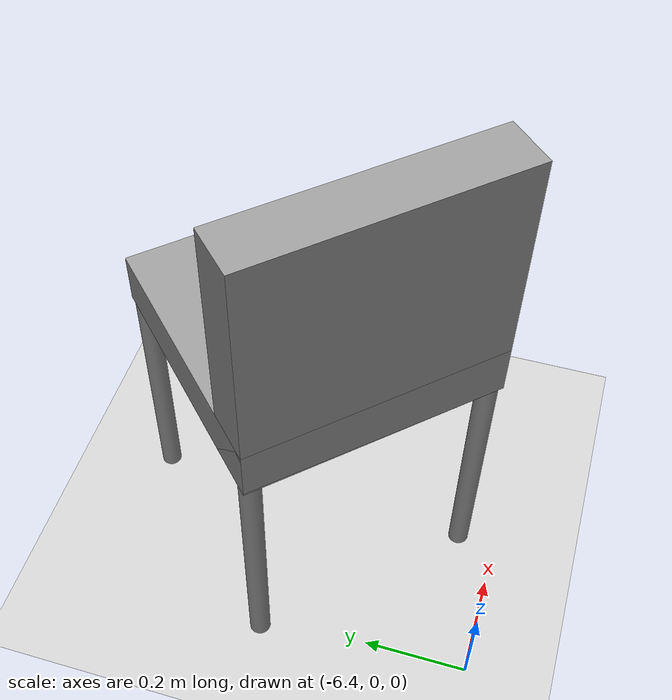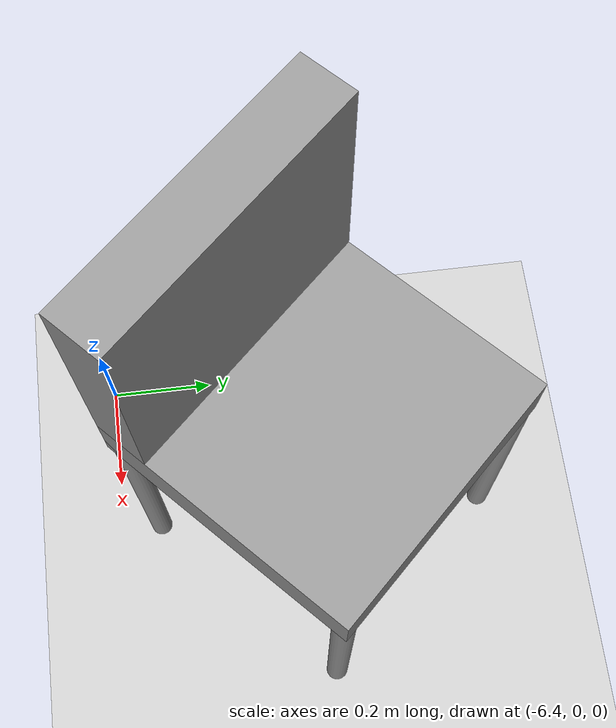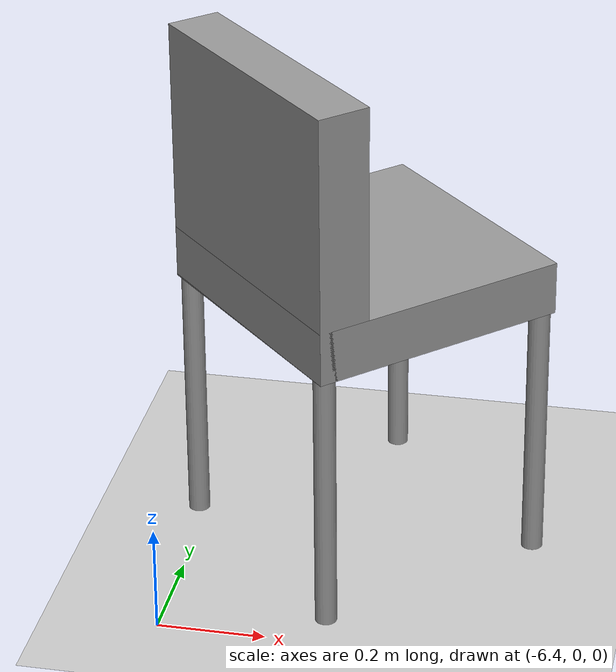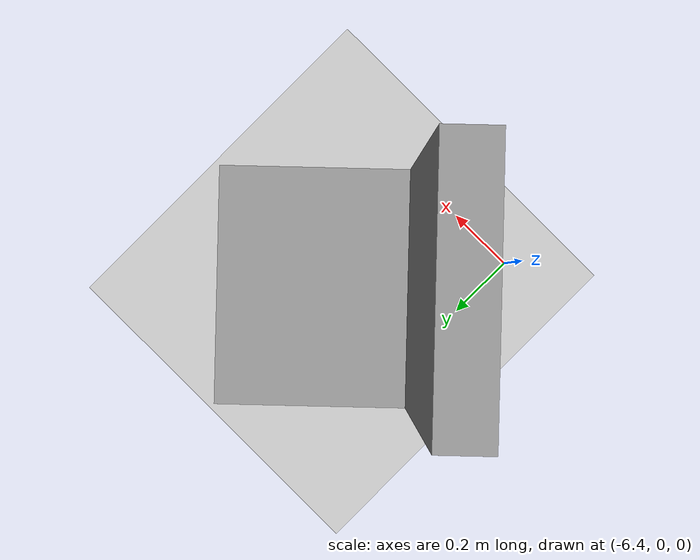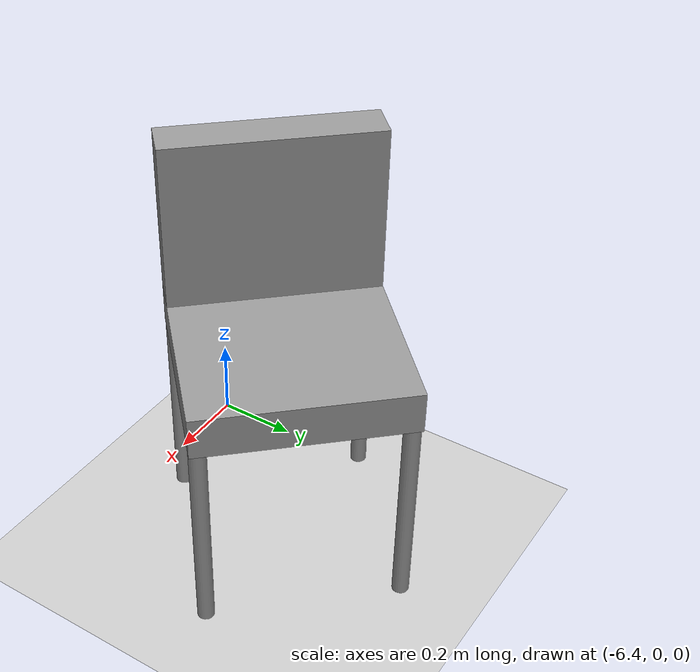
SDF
<sdf version="1.6">
 <world name="default">
  <model name="ground_plane">
   <static>1</static>
   <link name="link">
    <collision name="collision">
     <geometry><plane><normal>0 0 1</normal><size>100 100</size></plane></geometry>
     <surface>
      <contact><collide_bitmask>65535</collide_bitmask></contact>
      <friction><ode><mu>100</mu><mu2>50</mu2></ode></friction>
     </surface>
    </collision>
    <visual name="visual">
     <cast_shadows>0</cast_shadows>
     <geometry><plane><normal>0 0 1</normal><size>100 100</size></plane></geometry>
     <material>
      <script><uri>file://media/materials/scripts/gazebo.material</uri><name>Gazebo/Grey</name></script>
     </material>
    </visual>
   </link>
  </model>
  <model name="chair_12">
   <link name="link_0">
    <inertial>
     <mass>1</mass>
     <inertia><ixx>0.145833</ixx><ixy>0</ixy><ixz>0</ixz><iyy>0.145833</iyy><iyz>0</iyz><izz>0.125</izz></inertia>
    </inertial>
    <pose>-0.23 -0.19667 -0.280001 0 -0 0</pose>
    <visual name="visual">
     <geometry><cylinder><radius>0.02</radius><length>0.5</length></cylinder></geometry>
     <material>
      <lighting>1</lighting>
      <script><uri>file://media/materials/scripts/gazebo.material</uri><name>Gazebo/Grey</name></script>
      <shader type="vertex"><normal_map>__default__</normal_map></shader>
      <ambient>0.3 0.3 0.3 1</ambient>
      <diffuse>0.7 0.7 0.7 1</diffuse>
      <specular>0.01 0.01 0.01 1</specular>
      <emissive>0 0 0 1</emissive>
     </material>
    </visual>
    <collision name="collision">
     <geometry><cylinder><radius>0.02</radius><length>0.5</length></cylinder></geometry>
     <surface>
      <friction>
       <ode><mu>1</mu><mu2>1</mu2><fdir1>0 0 0</fdir1><slip1>0</slip1><slip2>0</slip2></ode>
       <torsional>
        <coefficient>1</coefficient>
        <patch_radius>0</patch_radius>
        <surface_radius>0</surface_radius>
        <use_patch_radius>1</use_patch_radius>
        <ode><slip>0</slip></ode>
       </torsional>
      </friction>
      <bounce><restitution_coefficient>0</restitution_coefficient><threshold>1e+06</threshold></bounce>
      <contact>
       <collide_without_contact>0</collide_without_contact>
       <collide_without_contact_bitmask>1</collide_without_contact_bitmask>
       <collide_bitmask>1</collide_bitmask>
       <ode>
        <soft_cfm>0</soft_cfm>
        <soft_erp>0.2</soft_erp>
        <kp>1e+13</kp>
        <kd>1</kd>
        <max_vel>0.01</max_vel>
        <min_depth>0</min_depth>
       </ode>
       <bullet>
        <split_impulse>1</split_impulse>
        <split_impulse_penetration_threshold>-0.01</split_impulse_penetration_threshold>
        <soft_cfm>0</soft_cfm>
        <soft_erp>0.2</soft_erp>
        <kp>1e+13</kp>
        <kd>1</kd>
       </bullet>
      </contact>
     </surface>
    </collision>
   </link>
   <link name="link_0_clone">
    <inertial>
     <mass>1</mass>
     <inertia><ixx>0.145833</ixx><ixy>0</ixy><ixz>0</ixz><iyy>0.145833</iyy><iyz>0</iyz><izz>0.125</izz></inertia>
    </inertial>
    <pose>0.23 -0.19667 -0.280001 0 -0 0</pose>
    <visual name="visual">
     <geometry><cylinder><radius>0.02</radius><length>0.5</length></cylinder></geometry>
     <material>
      <lighting>1</lighting>
      <script><uri>file://media/materials/scripts/gazebo.material</uri><name>Gazebo/Grey</name></script>
      <shader type="vertex"><normal_map>__default__</normal_map></shader>
      <ambient>0.3 0.3 0.3 1</ambient>
      <diffuse>0.7 0.7 0.7 1</diffuse>
      <specular>0.01 0.01 0.01 1</specular>
      <emissive>0 0 0 1</emissive>
     </material>
    </visual>
    <collision name="collision">
     <geometry><cylinder><radius>0.02</radius><length>0.5</length></cylinder></geometry>
     <surface>
      <friction>
       <ode><mu>1</mu><mu2>1</mu2><fdir1>0 0 0</fdir1><slip1>0</slip1><slip2>0</slip2></ode>
       <torsional>
        <coefficient>1</coefficient>
        <patch_radius>0</patch_radius>
        <surface_radius>0</surface_radius>
        <use_patch_radius>1</use_patch_radius>
        <ode><slip>0</slip></ode>
       </torsional>
      </friction>
      <bounce><restitution_coefficient>0</restitution_coefficient><threshold>1e+06</threshold></bounce>
      <contact>
       <collide_without_contact>0</collide_without_contact>
       <collide_without_contact_bitmask>1</collide_without_contact_bitmask>
       <collide_bitmask>1</collide_bitmask>
       <ode>
        <soft_cfm>0</soft_cfm>
        <soft_erp>0.2</soft_erp>
        <kp>1e+13</kp>
        <kd>1</kd>
        <max_vel>0.01</max_vel>
        <min_depth>0</min_depth>
       </ode>
       <bullet>
        <split_impulse>1</split_impulse>
        <split_impulse_penetration_threshold>-0.01</split_impulse_penetration_threshold>
        <soft_cfm>0</soft_cfm>
        <soft_erp>0.2</soft_erp>
        <kp>1e+13</kp>
        <kd>1</kd>
       </bullet>
      </contact>
     </surface>
    </collision>
   </link>
   <link name="link_0_clone_0">
    <inertial>
     <mass>1</mass>
     <inertia><ixx>0.145833</ixx><ixy>0</ixy><ixz>0</ixz><iyy>0.145833</iyy><iyz>0</iyz><izz>0.125</izz></inertia>
    </inertial>
    <pose>0.23 0.26333 -0.280001 0 -0 0</pose>
    <visual name="visual">
     <geometry><cylinder><radius>0.02</radius><length>0.5</length></cylinder></geometry>
     <material>
      <lighting>1</lighting>
      <script><uri>file://media/materials/scripts/gazebo.material</uri><name>Gazebo/Grey</name></script>
      <shader type="vertex"><normal_map>__default__</normal_map></shader>
      <ambient>0.3 0.3 0.3 1</ambient>
      <diffuse>0.7 0.7 0.7 1</diffuse>
      <specular>0.01 0.01 0.01 1</specular>
      <emissive>0 0 0 1</emissive>
     </material>
    </visual>
    <collision name="collision">
     <geometry><cylinder><radius>0.02</radius><length>0.5</length></cylinder></geometry>
     <surface>
      <friction>
       <ode><mu>1</mu><mu2>1</mu2><fdir1>0 0 0</fdir1><slip1>0</slip1><slip2>0</slip2></ode>
       <torsional>
        <coefficient>1</coefficient>
        <patch_radius>0</patch_radius>
        <surface_radius>0</surface_radius>
        <use_patch_radius>1</use_patch_radius>
        <ode><slip>0</slip></ode>
       </torsional>
      </friction>
      <bounce><restitution_coefficient>0</restitution_coefficient><threshold>1e+06</threshold></bounce>
      <contact>
       <collide_without_contact>0</collide_without_contact>
       <collide_without_contact_bitmask>1</collide_without_contact_bitmask>
       <collide_bitmask>1</collide_bitmask>
       <ode>
        <soft_cfm>0</soft_cfm>
        <soft_erp>0.2</soft_erp>
        <kp>1e+13</kp>
        <kd>1</kd>
        <max_vel>0.01</max_vel>
        <min_depth>0</min_depth>
       </ode>
       <bullet>
        <split_impulse>1</split_impulse>
        <split_impulse_penetration_threshold>-0.01</split_impulse_penetration_threshold>
        <soft_cfm>0</soft_cfm>
        <soft_erp>0.2</soft_erp>
        <kp>1e+13</kp>
        <kd>1</kd>
       </bullet>
      </contact>
     </surface>
    </collision>
   </link>
   <link name="link_0_clone_1">
    <inertial>
     <mass>1</mass>
     <inertia><ixx>0.145833</ixx><ixy>0</ixy><ixz>0</ixz><iyy>0.145833</iyy><iyz>0</iyz><izz>0.125</izz></inertia>
    </inertial>
    <pose>-0.23 0.26333 -0.280001 0 -0 0</pose>
    <visual name="visual">
     <geometry><cylinder><radius>0.02</radius><length>0.5</length></cylinder></geometry>
     <material>
      <lighting>1</lighting>
      <script><uri>file://media/materials/scripts/gazebo.material</uri><name>Gazebo/Grey</name></script>
      <shader type="vertex"><normal_map>__default__</normal_map></shader>
      <ambient>0.3 0.3 0.3 1</ambient>
      <diffuse>0.7 0.7 0.7 1</diffuse>
      <specular>0.01 0.01 0.01 1</specular>
      <emissive>0 0 0 1</emissive>
     </material>
    </visual>
    <collision name="collision">
     <geometry><cylinder><radius>0.02</radius><length>0.5</length></cylinder></geometry>
     <surface>
      <friction>
       <ode><mu>1</mu><mu2>1</mu2><fdir1>0 0 0</fdir1><slip1>0</slip1><slip2>0</slip2></ode>
       <torsional>
        <coefficient>1</coefficient>
        <patch_radius>0</patch_radius>
        <surface_radius>0</surface_radius>
        <use_patch_radius>1</use_patch_radius>
        <ode><slip>0</slip></ode>
       </torsional>
      </friction>
      <bounce><restitution_coefficient>0</restitution_coefficient><threshold>1e+06</threshold></bounce>
      <contact>
       <collide_without_contact>0</collide_without_contact>
       <collide_without_contact_bitmask>1</collide_without_contact_bitmask>
       <collide_bitmask>1</collide_bitmask>
       <ode>
        <soft_cfm>0</soft_cfm>
        <soft_erp>0.2</soft_erp>
        <kp>1e+13</kp>
        <kd>1</kd>
        <max_vel>0.01</max_vel>
        <min_depth>0</min_depth>
       </ode>
       <bullet>
        <split_impulse>1</split_impulse>
        <split_impulse_penetration_threshold>-0.01</split_impulse_penetration_threshold>
        <soft_cfm>0</soft_cfm>
        <soft_erp>0.2</soft_erp>
        <kp>1e+13</kp>
        <kd>1</kd>
       </bullet>
      </contact>
     </surface>
    </collision>
   </link>
   <link name="link_2">
    <inertial>
     <mass>1</mass>
     <inertia>
      <ixx>0.166667</ixx>
      <ixy>0</ixy>
      <ixz>0</ixz>
      <iyy>0.166667</iyy>
      <iyz>0</iyz>
      <izz>0.166667</izz>
     </inertia>
    </inertial>
    <pose>0 0.03333 0.019999 0 -0 0</pose>
    <visual name="visual">
     <geometry><box><size>0.5 0.5 0.1</size></box></geometry>
     <material>
      <lighting>1</lighting>
      <script><uri>file://media/materials/scripts/gazebo.material</uri><name>Gazebo/Grey</name></script>
      <shader type="vertex"><normal_map>__default__</normal_map></shader>
      <ambient>0.3 0.3 0.3 1</ambient>
      <diffuse>0.7 0.7 0.7 1</diffuse>
      <specular>0.01 0.01 0.01 1</specular>
      <emissive>0 0 0 1</emissive>
     </material>
    </visual>
    <collision name="collision">
     <geometry><box><size>0.5 0.5 0.1</size></box></geometry>
     <surface>
      <friction>
       <ode><mu>1</mu><mu2>1</mu2><fdir1>0 0 0</fdir1><slip1>0</slip1><slip2>0</slip2></ode>
       <torsional>
        <coefficient>1</coefficient>
        <patch_radius>0</patch_radius>
        <surface_radius>0</surface_radius>
        <use_patch_radius>1</use_patch_radius>
        <ode><slip>0</slip></ode>
       </torsional>
      </friction>
      <bounce><restitution_coefficient>0</restitution_coefficient><threshold>1e+06</threshold></bounce>
      <contact>
       <collide_without_contact>0</collide_without_contact>
       <collide_without_contact_bitmask>1</collide_without_contact_bitmask>
       <collide_bitmask>1</collide_bitmask>
       <ode>
        <soft_cfm>0</soft_cfm>
        <soft_erp>0.2</soft_erp>
        <kp>1e+13</kp>
        <kd>1</kd>
        <max_vel>0.01</max_vel>
        <min_depth>0</min_depth>
       </ode>
       <bullet>
        <split_impulse>1</split_impulse>
        <split_impulse_penetration_threshold>-0.01</split_impulse_penetration_threshold>
        <soft_cfm>0</soft_cfm>
        <soft_erp>0.2</soft_erp>
        <kp>1e+13</kp>
        <kd>1</kd>
       </bullet>
      </contact>
     </surface>
    </collision>
   </link>
   <link name="link_2_clone">
    <inertial>
     <mass>1</mass>
     <inertia>
      <ixx>0.166667</ixx>
      <ixy>0</ixy>
      <ixz>0</ixz>
      <iyy>0.166667</iyy>
      <iyz>0</iyz>
      <izz>0.166667</izz>
     </inertia>
    </inertial>
    <pose>0 -0.166646 0.220004 1.5707 -0 0</pose>
    <visual name="visual">
     <geometry><box><size>0.5 0.5 0.1</size></box></geometry>
     <material>
      <lighting>1</lighting>
      <script><uri>file://media/materials/scripts/gazebo.material</uri><name>Gazebo/Grey</name></script>
      <shader type="vertex"><normal_map>__default__</normal_map></shader>
      <ambient>0.3 0.3 0.3 1</ambient>
      <diffuse>0.7 0.7 0.7 1</diffuse>
      <specular>0.01 0.01 0.01 1</specular>
      <emissive>0 0 0 1</emissive>
     </material>
    </visual>
    <collision name="collision">
     <geometry><box><size>0.5 0.5 0.1</size></box></geometry>
     <surface>
      <friction>
       <ode><mu>1</mu><mu2>1</mu2><fdir1>0 0 0</fdir1><slip1>0</slip1><slip2>0</slip2></ode>
       <torsional>
        <coefficient>1</coefficient>
        <patch_radius>0</patch_radius>
        <surface_radius>0</surface_radius>
        <use_patch_radius>1</use_patch_radius>
        <ode><slip>0</slip></ode>
       </torsional>
      </friction>
      <bounce><restitution_coefficient>0</restitution_coefficient><threshold>1e+06</threshold></bounce>
      <contact>
       <collide_without_contact>0</collide_without_contact>
       <collide_without_contact_bitmask>1</collide_without_contact_bitmask>
       <collide_bitmask>1</collide_bitmask>
       <ode>
        <soft_cfm>0</soft_cfm>
        <soft_erp>0.2</soft_erp>
        <kp>1e+13</kp>
        <kd>1</kd>
        <max_vel>0.01</max_vel>
        <min_depth>0</min_depth>
       </ode>
       <bullet>
        <split_impulse>1</split_impulse>
        <split_impulse_penetration_threshold>-0.01</split_impulse_penetration_threshold>
        <soft_cfm>0</soft_cfm>
        <soft_erp>0.2</soft_erp>
        <kp>1e+13</kp>
        <kd>1</kd>
       </bullet>
      </contact>
     </surface>
    </collision>
   </link>
   <joint name="link_0_clone_JOINT_2" type="fixed">
    <parent>link_2</parent>
    <child>link_0_clone</child>
    <physics>
     <ode><limit><cfm>0</cfm><erp>0.2</erp></limit><suspension><cfm>0</cfm><erp>0.2</erp></suspension></ode>
    </physics>
   </joint>
   <joint name="link_2_JOINT_1" type="fixed">
    <parent>link_2</parent>
    <child>link_0</child>
    <physics>
     <ode><limit><cfm>0</cfm><erp>0.2</erp></limit><suspension><cfm>0</cfm><erp>0.2</erp></suspension></ode>
    </physics>
   </joint>
   <joint name="link_2_JOINT_3" type="fixed">
    <parent>link_2</parent>
    <child>link_0_clone_0</child>
    <physics>
     <ode><limit><cfm>0</cfm><erp>0.2</erp></limit><suspension><cfm>0</cfm><erp>0.2</erp></suspension></ode>
    </physics>
   </joint>
   <joint name="link_2_JOINT_4" type="fixed">
    <parent>link_2</parent>
    <child>link_0_clone_1</child>
    <physics>
     <ode><limit><cfm>0</cfm><erp>0.2</erp></limit><suspension><cfm>0</cfm><erp>0.2</erp></suspension></ode>
    </physics>
   </joint>
   <joint name="link_2_JOINT_5" type="fixed">
    <parent>link_2</parent>
    <child>link_2_clone</child>
    <physics>
     <ode><limit><cfm>0</cfm><erp>0.2</erp></limit><suspension><cfm>0</cfm><erp>0.2</erp></suspension></ode>
    </physics>
   </joint>
   <static>0</static>
   <pose>-6.12035 0.379388 0.53 1e-06 -0 -0.809552</pose>
  </model>
 </world>
</sdf>
